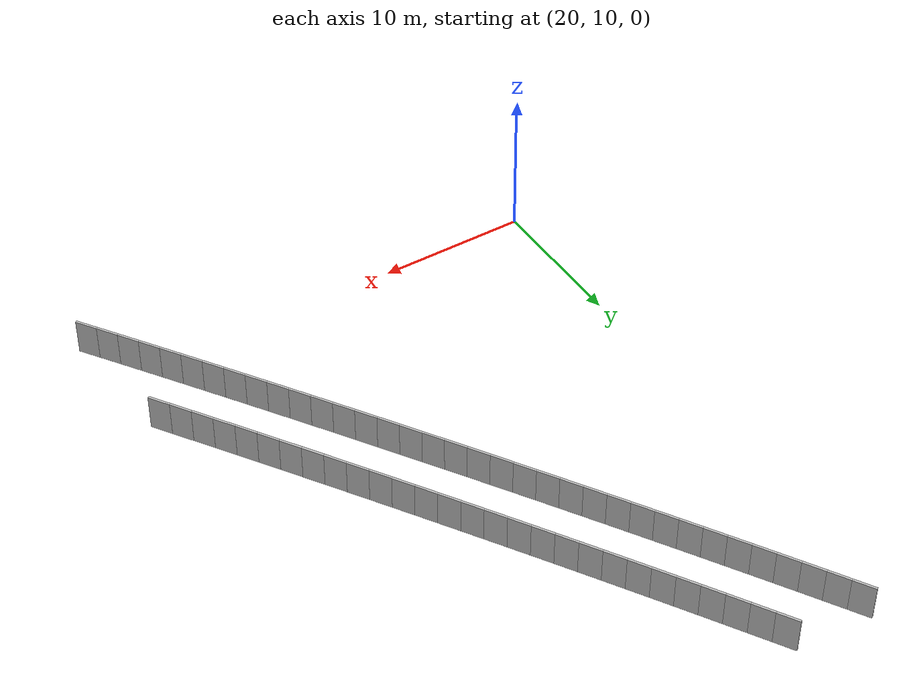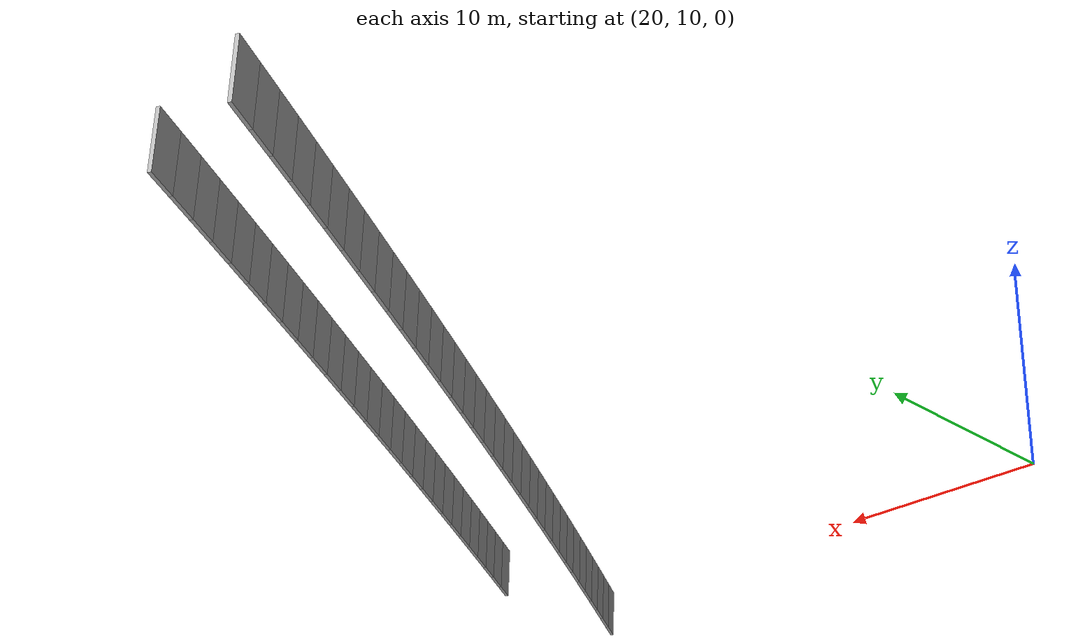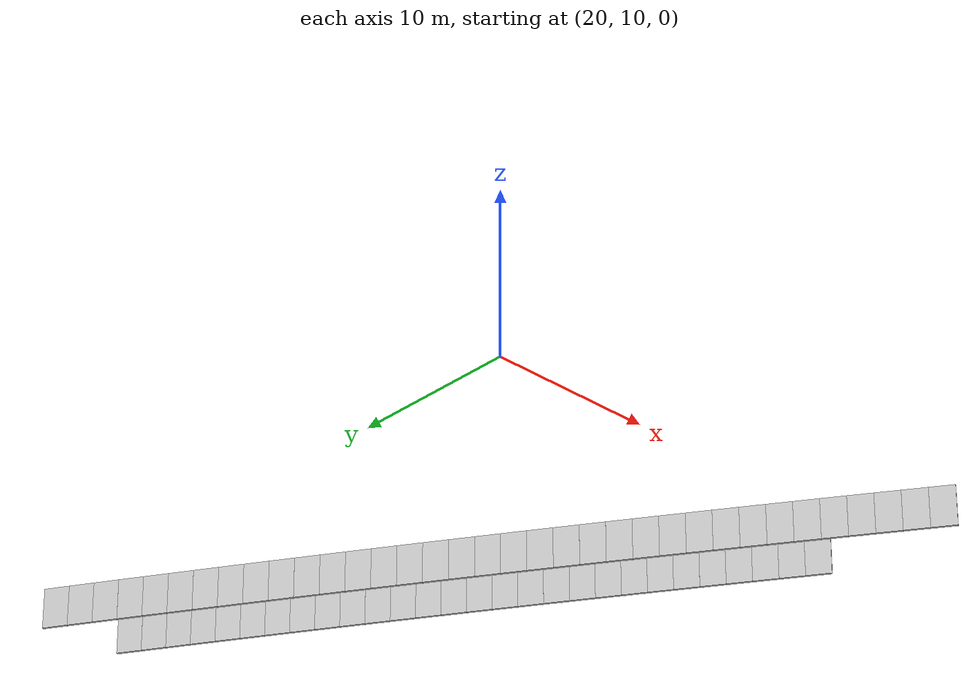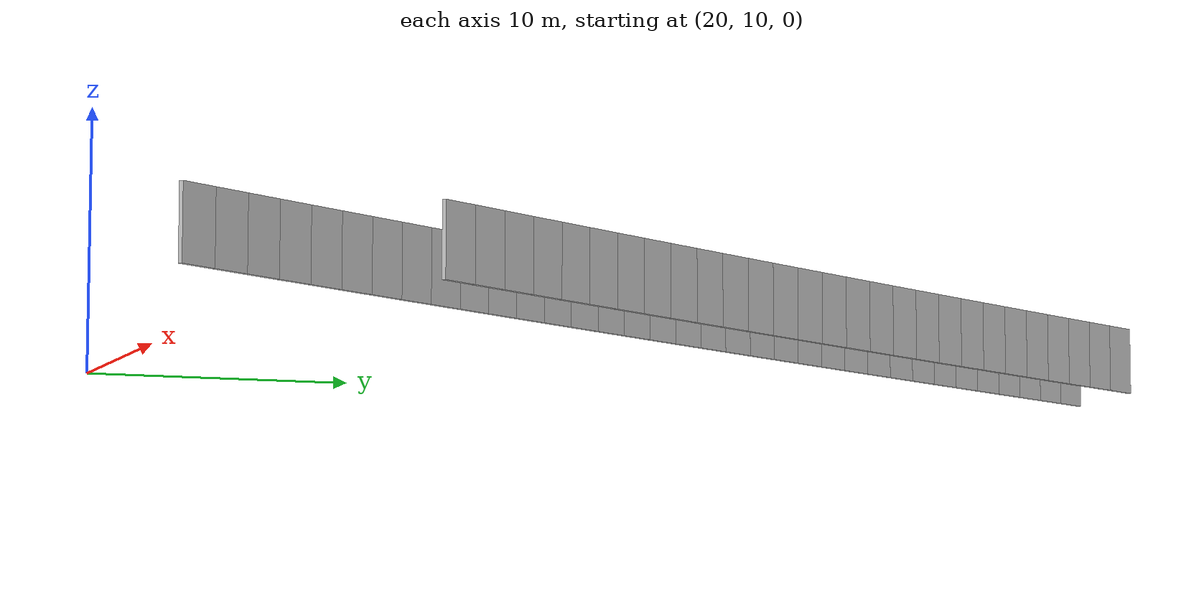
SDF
<?xml version="1.0" ?>
<sdf version="1.6">
  <model name="sps_0612">
    <pose frame="">0 0 0 0 -0 0</pose>
    <static>1</static>
    <self_collide>0</self_collide>
    <allow_auto_disable>0</allow_auto_disable>
    <link name="Wall8361">
      <kinematic>0</kinematic>
      <gravity>1</gravity>
      <self_collide>0</self_collide>
      <collision name="collision">
        <geometry>
          <box>
            <size>1.49893 0.15 2.5</size>
          </box>
        </geometry>
        <pose frame="">0 0 0 0 -0 0</pose>
      </collision>
      <visual name="visual">
        <geometry>
          <box>
            <size>1.49893 0.15 2.5</size>
          </box>
        </geometry>
        <pose frame="">0 0 0 0 -0 0</pose>
        <cast_shadows>1</cast_shadows>
        <transparency>0.0</transparency>
      </visual>
      <pose frame="">22.3165 49.2875 1.25 0 0 -1.02449</pose>
    </link>
    <link name="Wall8362">
      <kinematic>0</kinematic>
      <gravity>1</gravity>
      <self_collide>0</self_collide>
      <collision name="collision">
        <geometry>
          <box>
            <size>1.49887 0.15 2.5</size>
          </box>
        </geometry>
        <pose frame="">0 0 0 0 -0 0</pose>
      </collision>
      <visual name="visual">
        <geometry>
          <box>
            <size>1.49887 0.15 2.5</size>
          </box>
        </geometry>
        <pose frame="">0 0 0 0 -0 0</pose>
        <cast_shadows>1</cast_shadows>
        <transparency>0.0</transparency>
      </visual>
      <pose frame="">23.0962 48.0074 1.25 0 0 -1.02284</pose>
    </link>
    <link name="Wall8363">
      <kinematic>0</kinematic>
      <gravity>1</gravity>
      <self_collide>0</self_collide>
      <collision name="collision">
        <geometry>
          <box>
            <size>1.49921 0.15 2.5</size>
          </box>
        </geometry>
        <pose frame="">0 0 0 0 -0 0</pose>
      </collision>
      <visual name="visual">
        <geometry>
          <box>
            <size>1.49921 0.15 2.5</size>
          </box>
        </geometry>
        <pose frame="">0 0 0 0 -0 0</pose>
        <cast_shadows>1</cast_shadows>
        <transparency>0.0</transparency>
      </visual>
      <pose frame="">23.878 46.7284 1.25 0 0 -1.02145</pose>
    </link>
    <link name="Wall8364">
      <kinematic>0</kinematic>
      <gravity>1</gravity>
      <self_collide>0</self_collide>
      <collision name="collision">
        <geometry>
          <box>
            <size>1.49876 0.15 2.5</size>
          </box>
        </geometry>
        <pose frame="">0 0 0 0 -0 0</pose>
      </collision>
      <visual name="visual">
        <geometry>
          <box>
            <size>1.49876 0.15 2.5</size>
          </box>
        </geometry>
        <pose frame="">0 0 0 0 -0 0</pose>
        <cast_shadows>1</cast_shadows>
        <transparency>0.0</transparency>
      </visual>
      <pose frame="">24.6617 45.4506 1.25 0 0 -1.01984</pose>
    </link>
    <link name="Wall8365">
      <kinematic>0</kinematic>
      <gravity>1</gravity>
      <self_collide>0</self_collide>
      <collision name="collision">
        <geometry>
          <box>
            <size>1.49892 0.15 2.5</size>
          </box>
        </geometry>
        <pose frame="">0 0 0 0 -0 0</pose>
      </collision>
      <visual name="visual">
        <geometry>
          <box>
            <size>1.49892 0.15 2.5</size>
          </box>
        </geometry>
        <pose frame="">0 0 0 0 -0 0</pose>
        <cast_shadows>1</cast_shadows>
        <transparency>0.0</transparency>
      </visual>
      <pose frame="">25.4474 44.1742 1.25 0 0 -1.01818</pose>
    </link>
    <link name="Wall8366">
      <kinematic>0</kinematic>
      <gravity>1</gravity>
      <self_collide>0</self_collide>
      <collision name="collision">
        <geometry>
          <box>
            <size>1.49904 0.15 2.5</size>
          </box>
        </geometry>
        <pose frame="">0 0 0 0 -0 0</pose>
      </collision>
      <visual name="visual">
        <geometry>
          <box>
            <size>1.49904 0.15 2.5</size>
          </box>
        </geometry>
        <pose frame="">0 0 0 0 -0 0</pose>
        <cast_shadows>1</cast_shadows>
        <transparency>0.0</transparency>
      </visual>
      <pose frame="">26.2353 42.899 1.25 0 0 -1.01651</pose>
    </link>
    <link name="Wall8367">
      <kinematic>0</kinematic>
      <gravity>1</gravity>
      <self_collide>0</self_collide>
      <collision name="collision">
        <geometry>
          <box>
            <size>1.49897 0.15 2.5</size>
          </box>
        </geometry>
        <pose frame="">0 0 0 0 -0 0</pose>
      </collision>
      <visual name="visual">
        <geometry>
          <box>
            <size>1.49897 0.15 2.5</size>
          </box>
        </geometry>
        <pose frame="">0 0 0 0 -0 0</pose>
        <cast_shadows>1</cast_shadows>
        <transparency>0.0</transparency>
      </visual>
      <pose frame="">27.0253 41.625 1.25 0 0 -1.01504</pose>
    </link>
    <link name="Wall8368">
      <kinematic>0</kinematic>
      <gravity>1</gravity>
      <self_collide>0</self_collide>
      <collision name="collision">
        <geometry>
          <box>
            <size>1.49901 0.15 2.5</size>
          </box>
        </geometry>
        <pose frame="">0 0 0 0 -0 0</pose>
      </collision>
      <visual name="visual">
        <geometry>
          <box>
            <size>1.49901 0.15 2.5</size>
          </box>
        </geometry>
        <pose frame="">0 0 0 0 -0 0</pose>
        <cast_shadows>1</cast_shadows>
        <transparency>0.0</transparency>
      </visual>
      <pose frame="">27.8171 40.3522 1.25 0 0 -1.01353</pose>
    </link>
    <link name="Wall8369">
      <kinematic>0</kinematic>
      <gravity>1</gravity>
      <self_collide>0</self_collide>
      <collision name="collision">
        <geometry>
          <box>
            <size>1.49889 0.15 2.5</size>
          </box>
        </geometry>
        <pose frame="">0 0 0 0 -0 0</pose>
      </collision>
      <visual name="visual">
        <geometry>
          <box>
            <size>1.49889 0.15 2.5</size>
          </box>
        </geometry>
        <pose frame="">0 0 0 0 -0 0</pose>
        <cast_shadows>1</cast_shadows>
        <transparency>0.0</transparency>
      </visual>
      <pose frame="">28.6109 39.0807 1.25 0 0 -1.01189</pose>
    </link>
    <link name="Wall8370">
      <kinematic>0</kinematic>
      <gravity>1</gravity>
      <self_collide>0</self_collide>
      <collision name="collision">
        <geometry>
          <box>
            <size>1.49893 0.15 2.5</size>
          </box>
        </geometry>
        <pose frame="">0 0 0 0 -0 0</pose>
      </collision>
      <visual name="visual">
        <geometry>
          <box>
            <size>1.49893 0.15 2.5</size>
          </box>
        </geometry>
        <pose frame="">0 0 0 0 -0 0</pose>
        <cast_shadows>1</cast_shadows>
        <transparency>0.0</transparency>
      </visual>
      <pose frame="">29.4067 37.8105 1.25 0 0 -1.01032</pose>
    </link>
    <link name="Wall8371">
      <kinematic>0</kinematic>
      <gravity>1</gravity>
      <self_collide>0</self_collide>
      <collision name="collision">
        <geometry>
          <box>
            <size>1.49878 0.15 2.5</size>
          </box>
        </geometry>
        <pose frame="">0 0 0 0 -0 0</pose>
      </collision>
      <visual name="visual">
        <geometry>
          <box>
            <size>1.49878 0.15 2.5</size>
          </box>
        </geometry>
        <pose frame="">0 0 0 0 -0 0</pose>
        <cast_shadows>1</cast_shadows>
        <transparency>0.0</transparency>
      </visual>
      <pose frame="">30.2045 36.5416 1.25 0 0 -1.00872</pose>
    </link>
    <link name="Wall8372">
      <kinematic>0</kinematic>
      <gravity>1</gravity>
      <self_collide>0</self_collide>
      <collision name="collision">
        <geometry>
          <box>
            <size>1.49906 0.15 2.5</size>
          </box>
        </geometry>
        <pose frame="">0 0 0 0 -0 0</pose>
      </collision>
      <visual name="visual">
        <geometry>
          <box>
            <size>1.49906 0.15 2.5</size>
          </box>
        </geometry>
        <pose frame="">0 0 0 0 -0 0</pose>
        <cast_shadows>1</cast_shadows>
        <transparency>0.0</transparency>
      </visual>
      <pose frame="">31.0043 35.2739 1.25 0 0 -1.0072</pose>
    </link>
    <link name="Wall8373">
      <kinematic>0</kinematic>
      <gravity>1</gravity>
      <self_collide>0</self_collide>
      <collision name="collision">
        <geometry>
          <box>
            <size>1.49901 0.15 2.5</size>
          </box>
        </geometry>
        <pose frame="">0 0 0 0 -0 0</pose>
      </collision>
      <visual name="visual">
        <geometry>
          <box>
            <size>1.49901 0.15 2.5</size>
          </box>
        </geometry>
        <pose frame="">0 0 0 0 -0 0</pose>
        <cast_shadows>1</cast_shadows>
        <transparency>0.0</transparency>
      </visual>
      <pose frame="">31.8062 34.0074 1.25 0 0 -1.00549</pose>
    </link>
    <link name="Wall8374">
      <kinematic>0</kinematic>
      <gravity>1</gravity>
      <self_collide>0</self_collide>
      <collision name="collision">
        <geometry>
          <box>
            <size>1.49897 0.15 2.5</size>
          </box>
        </geometry>
        <pose frame="">0 0 0 0 -0 0</pose>
      </collision>
      <visual name="visual">
        <geometry>
          <box>
            <size>1.49897 0.15 2.5</size>
          </box>
        </geometry>
        <pose frame="">0 0 0 0 -0 0</pose>
        <cast_shadows>1</cast_shadows>
        <transparency>0.0</transparency>
      </visual>
      <pose frame="">32.6101 32.7422 1.25 0 0 -1.00403</pose>
    </link>
    <link name="Wall8375">
      <kinematic>0</kinematic>
      <gravity>1</gravity>
      <self_collide>0</self_collide>
      <collision name="collision">
        <geometry>
          <box>
            <size>1.49883 0.15 2.5</size>
          </box>
        </geometry>
        <pose frame="">0 0 0 0 -0 0</pose>
      </collision>
      <visual name="visual">
        <geometry>
          <box>
            <size>1.49883 0.15 2.5</size>
          </box>
        </geometry>
        <pose frame="">0 0 0 0 -0 0</pose>
        <cast_shadows>1</cast_shadows>
        <transparency>0.0</transparency>
      </visual>
      <pose frame="">33.4159 31.4783 1.25 0 0 -1.00242</pose>
    </link>
    <link name="Wall8376">
      <kinematic>0</kinematic>
      <gravity>1</gravity>
      <self_collide>0</self_collide>
      <collision name="collision">
        <geometry>
          <box>
            <size>1.49907 0.15 2.5</size>
          </box>
        </geometry>
        <pose frame="">0 0 0 0 -0 0</pose>
      </collision>
      <visual name="visual">
        <geometry>
          <box>
            <size>1.49907 0.15 2.5</size>
          </box>
        </geometry>
        <pose frame="">0 0 0 0 -0 0</pose>
        <cast_shadows>1</cast_shadows>
        <transparency>0.0</transparency>
      </visual>
      <pose frame="">34.2237 30.2157 1.25 0 0 -1.00074</pose>
    </link>
    <link name="Wall8377">
      <kinematic>0</kinematic>
      <gravity>1</gravity>
      <self_collide>0</self_collide>
      <collision name="collision">
        <geometry>
          <box>
            <size>1.4988 0.15 2.5</size>
          </box>
        </geometry>
        <pose frame="">0 0 0 0 -0 0</pose>
      </collision>
      <visual name="visual">
        <geometry>
          <box>
            <size>1.4988 0.15 2.5</size>
          </box>
        </geometry>
        <pose frame="">0 0 0 0 -0 0</pose>
        <cast_shadows>1</cast_shadows>
        <transparency>0.0</transparency>
      </visual>
      <pose frame="">35.0337 28.9544 1.25 0 0 -0.999217</pose>
    </link>
    <link name="Wall8378">
      <kinematic>0</kinematic>
      <gravity>1</gravity>
      <self_collide>0</self_collide>
      <collision name="collision">
        <geometry>
          <box>
            <size>1.49901 0.15 2.5</size>
          </box>
        </geometry>
        <pose frame="">0 0 0 0 -0 0</pose>
      </collision>
      <visual name="visual">
        <geometry>
          <box>
            <size>1.49901 0.15 2.5</size>
          </box>
        </geometry>
        <pose frame="">0 0 0 0 -0 0</pose>
        <cast_shadows>1</cast_shadows>
        <transparency>0.0</transparency>
      </visual>
      <pose frame="">35.8455 27.6944 1.25 0 0 -0.997565</pose>
    </link>
    <link name="Wall8379">
      <kinematic>0</kinematic>
      <gravity>1</gravity>
      <self_collide>0</self_collide>
      <collision name="collision">
        <geometry>
          <box>
            <size>1.49903 0.15 2.5</size>
          </box>
        </geometry>
        <pose frame="">0 0 0 0 -0 0</pose>
      </collision>
      <visual name="visual">
        <geometry>
          <box>
            <size>1.49903 0.15 2.5</size>
          </box>
        </geometry>
        <pose frame="">0 0 0 0 -0 0</pose>
        <cast_shadows>1</cast_shadows>
        <transparency>0.0</transparency>
      </visual>
      <pose frame="">36.6594 26.4356 1.25 0 0 -0.996119</pose>
    </link>
    <link name="Wall8380">
      <kinematic>0</kinematic>
      <gravity>1</gravity>
      <self_collide>0</self_collide>
      <collision name="collision">
        <geometry>
          <box>
            <size>1.49887 0.15 2.5</size>
          </box>
        </geometry>
        <pose frame="">0 0 0 0 -0 0</pose>
      </collision>
      <visual name="visual">
        <geometry>
          <box>
            <size>1.49887 0.15 2.5</size>
          </box>
        </geometry>
        <pose frame="">0 0 0 0 -0 0</pose>
        <cast_shadows>1</cast_shadows>
        <transparency>0.0</transparency>
      </visual>
      <pose frame="">37.4752 25.1781 1.25 0 0 -0.994495</pose>
    </link>
    <link name="Wall8381">
      <kinematic>0</kinematic>
      <gravity>1</gravity>
      <self_collide>0</self_collide>
      <collision name="collision">
        <geometry>
          <box>
            <size>1.49854 0.15 2.5</size>
          </box>
        </geometry>
        <pose frame="">0 0 0 0 -0 0</pose>
      </collision>
      <visual name="visual">
        <geometry>
          <box>
            <size>1.49854 0.15 2.5</size>
          </box>
        </geometry>
        <pose frame="">0 0 0 0 -0 0</pose>
        <cast_shadows>1</cast_shadows>
        <transparency>0.0</transparency>
      </visual>
      <pose frame="">38.2929 23.9221 1.25 0 0 -0.992893</pose>
    </link>
    <link name="Wall8382">
      <kinematic>0</kinematic>
      <gravity>1</gravity>
      <self_collide>0</self_collide>
      <collision name="collision">
        <geometry>
          <box>
            <size>1.49892 0.15 2.5</size>
          </box>
        </geometry>
        <pose frame="">0 0 0 0 -0 0</pose>
      </collision>
      <visual name="visual">
        <geometry>
          <box>
            <size>1.49892 0.15 2.5</size>
          </box>
        </geometry>
        <pose frame="">0 0 0 0 -0 0</pose>
        <cast_shadows>1</cast_shadows>
        <transparency>0.0</transparency>
      </visual>
      <pose frame="">39.1126 22.6674 1.25 0 0 -0.991309</pose>
    </link>
    <link name="Wall8383">
      <kinematic>0</kinematic>
      <gravity>1</gravity>
      <self_collide>0</self_collide>
      <collision name="collision">
        <geometry>
          <box>
            <size>1.4989 0.15 2.5</size>
          </box>
        </geometry>
        <pose frame="">0 0 0 0 -0 0</pose>
      </collision>
      <visual name="visual">
        <geometry>
          <box>
            <size>1.4989 0.15 2.5</size>
          </box>
        </geometry>
        <pose frame="">0 0 0 0 -0 0</pose>
        <cast_shadows>1</cast_shadows>
        <transparency>0.0</transparency>
      </visual>
      <pose frame="">39.9343 21.4138 1.25 0 0 -0.989841</pose>
    </link>
    <link name="Wall8384">
      <kinematic>0</kinematic>
      <gravity>1</gravity>
      <self_collide>0</self_collide>
      <collision name="collision">
        <geometry>
          <box>
            <size>1.4989 0.15 2.5</size>
          </box>
        </geometry>
        <pose frame="">0 0 0 0 -0 0</pose>
      </collision>
      <visual name="visual">
        <geometry>
          <box>
            <size>1.4989 0.15 2.5</size>
          </box>
        </geometry>
        <pose frame="">0 0 0 0 -0 0</pose>
        <cast_shadows>1</cast_shadows>
        <transparency>0.0</transparency>
      </visual>
      <pose frame="">40.758 20.1615 1.25 0 0 -0.988136</pose>
    </link>
    <link name="Wall8385">
      <kinematic>0</kinematic>
      <gravity>1</gravity>
      <self_collide>0</self_collide>
      <collision name="collision">
        <geometry>
          <box>
            <size>1.49908 0.15 2.5</size>
          </box>
        </geometry>
        <pose frame="">0 0 0 0 -0 0</pose>
      </collision>
      <visual name="visual">
        <geometry>
          <box>
            <size>1.49908 0.15 2.5</size>
          </box>
        </geometry>
        <pose frame="">0 0 0 0 -0 0</pose>
        <cast_shadows>1</cast_shadows>
        <transparency>0.0</transparency>
      </visual>
      <pose frame="">41.5839 18.9105 1.25 0 0 -0.986554</pose>
    </link>
    <link name="Wall8386">
      <kinematic>0</kinematic>
      <gravity>1</gravity>
      <self_collide>0</self_collide>
      <collision name="collision">
        <geometry>
          <box>
            <size>1.49885 0.15 2.5</size>
          </box>
        </geometry>
        <pose frame="">0 0 0 0 -0 0</pose>
      </collision>
      <visual name="visual">
        <geometry>
          <box>
            <size>1.49885 0.15 2.5</size>
          </box>
        </geometry>
        <pose frame="">0 0 0 0 -0 0</pose>
        <cast_shadows>1</cast_shadows>
        <transparency>0.0</transparency>
      </visual>
      <pose frame="">42.4116 17.6608 1.25 0 0 -0.985086</pose>
    </link>
    <link name="Wall8387">
      <kinematic>0</kinematic>
      <gravity>1</gravity>
      <self_collide>0</self_collide>
      <collision name="collision">
        <geometry>
          <box>
            <size>1.49888 0.15 2.5</size>
          </box>
        </geometry>
        <pose frame="">0 0 0 0 -0 0</pose>
      </collision>
      <visual name="visual">
        <geometry>
          <box>
            <size>1.49888 0.15 2.5</size>
          </box>
        </geometry>
        <pose frame="">0 0 0 0 -0 0</pose>
        <cast_shadows>1</cast_shadows>
        <transparency>0.0</transparency>
      </visual>
      <pose frame="">43.2412 16.4125 1.25 0 0 -0.983291</pose>
    </link>
    <link name="Wall8388">
      <kinematic>0</kinematic>
      <gravity>1</gravity>
      <self_collide>0</self_collide>
      <collision name="collision">
        <geometry>
          <box>
            <size>1.49893 0.15 2.5</size>
          </box>
        </geometry>
        <pose frame="">0 0 0 0 -0 0</pose>
      </collision>
      <visual name="visual">
        <geometry>
          <box>
            <size>1.49893 0.15 2.5</size>
          </box>
        </geometry>
        <pose frame="">0 0 0 0 -0 0</pose>
        <cast_shadows>1</cast_shadows>
        <transparency>0.0</transparency>
      </visual>
      <pose frame="">44.073 15.1655 1.25 0 0 -0.981845</pose>
    </link>
    <link name="Wall8389">
      <kinematic>0</kinematic>
      <gravity>1</gravity>
      <self_collide>0</self_collide>
      <collision name="collision">
        <geometry>
          <box>
            <size>1.49906 0.15 2.5</size>
          </box>
        </geometry>
        <pose frame="">0 0 0 0 -0 0</pose>
      </collision>
      <visual name="visual">
        <geometry>
          <box>
            <size>1.49906 0.15 2.5</size>
          </box>
        </geometry>
        <pose frame="">0 0 0 0 -0 0</pose>
        <cast_shadows>1</cast_shadows>
        <transparency>0.0</transparency>
      </visual>
      <pose frame="">44.9066 13.9197 1.25 0 0 -0.980332</pose>
    </link>
    <link name="Wall8390">
      <kinematic>0</kinematic>
      <gravity>1</gravity>
      <self_collide>0</self_collide>
      <collision name="collision">
        <geometry>
          <box>
            <size>1.49881 0.15 2.5</size>
          </box>
        </geometry>
        <pose frame="">0 0 0 0 -0 0</pose>
      </collision>
      <visual name="visual">
        <geometry>
          <box>
            <size>1.49881 0.15 2.5</size>
          </box>
        </geometry>
        <pose frame="">0 0 0 0 -0 0</pose>
        <cast_shadows>1</cast_shadows>
        <transparency>0.0</transparency>
      </visual>
      <pose frame="">45.7422 12.6753 1.25 0 0 -0.978604</pose>
    </link>
    <link name="Wall8391">
      <kinematic>0</kinematic>
      <gravity>1</gravity>
      <self_collide>0</self_collide>
      <collision name="collision">
        <geometry>
          <box>
            <size>1.49924 0.15 2.5</size>
          </box>
        </geometry>
        <pose frame="">0 0 0 0 -0 0</pose>
      </collision>
      <visual name="visual">
        <geometry>
          <box>
            <size>1.49924 0.15 2.5</size>
          </box>
        </geometry>
        <pose frame="">0 0 0 0 -0 0</pose>
        <cast_shadows>1</cast_shadows>
        <transparency>0.0</transparency>
      </visual>
      <pose frame="">46.5798 11.4321 1.25 0 0 -0.977227</pose>
    </link>
    <link name="Wall8392">
      <kinematic>0</kinematic>
      <gravity>1</gravity>
      <self_collide>0</self_collide>
      <collision name="collision">
        <geometry>
          <box>
            <size>1.49895 0.15 2.5</size>
          </box>
        </geometry>
        <pose frame="">0 0 0 0 -0 0</pose>
      </collision>
      <visual name="visual">
        <geometry>
          <box>
            <size>1.49895 0.15 2.5</size>
          </box>
        </geometry>
        <pose frame="">0 0 0 0 -0 0</pose>
        <cast_shadows>1</cast_shadows>
        <transparency>0.0</transparency>
      </visual>
      <pose frame="">47.4192 10.1901 1.25 0 0 -0.975622</pose>
    </link>
    <link name="Wall8393">
      <kinematic>0</kinematic>
      <gravity>1</gravity>
      <self_collide>0</self_collide>
      <collision name="collision">
        <geometry>
          <box>
            <size>1.49903 0.15 2.5</size>
          </box>
        </geometry>
        <pose frame="">0 0 0 0 -0 0</pose>
      </collision>
      <visual name="visual">
        <geometry>
          <box>
            <size>1.49903 0.15 2.5</size>
          </box>
        </geometry>
        <pose frame="">0 0 0 0 -0 0</pose>
        <cast_shadows>1</cast_shadows>
        <transparency>0.0</transparency>
      </visual>
      <pose frame="">48.2607 8.94957 1.25 0 0 -0.973884</pose>
    </link>
    <link name="Wall8394">
      <kinematic>0</kinematic>
      <gravity>1</gravity>
      <self_collide>0</self_collide>
      <collision name="collision">
        <geometry>
          <box>
            <size>1.49885 0.15 2.5</size>
          </box>
        </geometry>
        <pose frame="">0 0 0 0 -0 0</pose>
      </collision>
      <visual name="visual">
        <geometry>
          <box>
            <size>1.49885 0.15 2.5</size>
          </box>
        </geometry>
        <pose frame="">0 0 0 0 -0 0</pose>
        <cast_shadows>1</cast_shadows>
        <transparency>0.0</transparency>
      </visual>
      <pose frame="">49.1042 7.71049 1.25 0 0 -0.972324</pose>
    </link>
    <link name="Wall8395">
      <kinematic>0</kinematic>
      <gravity>1</gravity>
      <self_collide>0</self_collide>
      <collision name="collision">
        <geometry>
          <box>
            <size>1.49894 0.15 2.5</size>
          </box>
        </geometry>
        <pose frame="">0 0 0 0 -0 0</pose>
      </collision>
      <visual name="visual">
        <geometry>
          <box>
            <size>1.49894 0.15 2.5</size>
          </box>
        </geometry>
        <pose frame="">0 0 0 0 -0 0</pose>
        <cast_shadows>1</cast_shadows>
        <transparency>0.0</transparency>
      </visual>
      <pose frame="">49.9495 6.4727 1.25 0 0 -0.970935</pose>
    </link>
    <link name="Wall9444">
      <kinematic>0</kinematic>
      <gravity>1</gravity>
      <self_collide>0</self_collide>
      <collision name="collision">
        <geometry>
          <box>
            <size>1.49242 0.15 2.5</size>
          </box>
        </geometry>
        <pose frame="">0 0 0 0 -0 0</pose>
      </collision>
      <visual name="visual">
        <geometry>
          <box>
            <size>1.49242 0.15 2.5</size>
          </box>
        </geometry>
        <pose frame="">0 0 0 0 -0 0</pose>
        <cast_shadows>1</cast_shadows>
        <transparency>0.0</transparency>
      </visual>
      <pose frame="">27.4086 48.8905 1.25 0 0 -1.02136</pose>
    </link>
    <link name="Wall9445">
      <kinematic>0</kinematic>
      <gravity>1</gravity>
      <self_collide>0</self_collide>
      <collision name="collision">
        <geometry>
          <box>
            <size>1.49237 0.15 2.5</size>
          </box>
        </geometry>
        <pose frame="">0 0 0 0 -0 0</pose>
      </collision>
      <visual name="visual">
        <geometry>
          <box>
            <size>1.49237 0.15 2.5</size>
          </box>
        </geometry>
        <pose frame="">0 0 0 0 -0 0</pose>
        <cast_shadows>1</cast_shadows>
        <transparency>0.0</transparency>
      </visual>
      <pose frame="">28.189 47.6184 1.25 0 0 -1.0197</pose>
    </link>
    <link name="Wall9446">
      <kinematic>0</kinematic>
      <gravity>1</gravity>
      <self_collide>0</self_collide>
      <collision name="collision">
        <geometry>
          <box>
            <size>1.49251 0.15 2.5</size>
          </box>
        </geometry>
        <pose frame="">0 0 0 0 -0 0</pose>
      </collision>
      <visual name="visual">
        <geometry>
          <box>
            <size>1.49251 0.15 2.5</size>
          </box>
        </geometry>
        <pose frame="">0 0 0 0 -0 0</pose>
        <cast_shadows>1</cast_shadows>
        <transparency>0.0</transparency>
      </visual>
      <pose frame="">28.9714 46.3475 1.25 0 0 -1.01822</pose>
    </link>
    <link name="Wall9447">
      <kinematic>0</kinematic>
      <gravity>1</gravity>
      <self_collide>0</self_collide>
      <collision name="collision">
        <geometry>
          <box>
            <size>1.49237 0.15 2.5</size>
          </box>
        </geometry>
        <pose frame="">0 0 0 0 -0 0</pose>
      </collision>
      <visual name="visual">
        <geometry>
          <box>
            <size>1.49237 0.15 2.5</size>
          </box>
        </geometry>
        <pose frame="">0 0 0 0 -0 0</pose>
        <cast_shadows>1</cast_shadows>
        <transparency>0.0</transparency>
      </visual>
      <pose frame="">29.7558 45.0778 1.25 0 0 -1.01658</pose>
    </link>
    <link name="Wall9448">
      <kinematic>0</kinematic>
      <gravity>1</gravity>
      <self_collide>0</self_collide>
      <collision name="collision">
        <geometry>
          <box>
            <size>1.49216 0.15 2.5</size>
          </box>
        </geometry>
        <pose frame="">0 0 0 0 -0 0</pose>
      </collision>
      <visual name="visual">
        <geometry>
          <box>
            <size>1.49216 0.15 2.5</size>
          </box>
        </geometry>
        <pose frame="">0 0 0 0 -0 0</pose>
        <cast_shadows>1</cast_shadows>
        <transparency>0.0</transparency>
      </visual>
      <pose frame="">30.542 43.8095 1.25 0 0 -1.0151</pose>
    </link>
    <link name="Wall9449">
      <kinematic>0</kinematic>
      <gravity>1</gravity>
      <self_collide>0</self_collide>
      <collision name="collision">
        <geometry>
          <box>
            <size>1.49247 0.15 2.5</size>
          </box>
        </geometry>
        <pose frame="">0 0 0 0 -0 0</pose>
      </collision>
      <visual name="visual">
        <geometry>
          <box>
            <size>1.49247 0.15 2.5</size>
          </box>
        </geometry>
        <pose frame="">0 0 0 0 -0 0</pose>
        <cast_shadows>1</cast_shadows>
        <transparency>0.0</transparency>
      </visual>
      <pose frame="">31.3303 42.5424 1.25 0 0 -1.01345</pose>
    </link>
    <link name="Wall9450">
      <kinematic>0</kinematic>
      <gravity>1</gravity>
      <self_collide>0</self_collide>
      <collision name="collision">
        <geometry>
          <box>
            <size>1.49232 0.15 2.5</size>
          </box>
        </geometry>
        <pose frame="">0 0 0 0 -0 0</pose>
      </collision>
      <visual name="visual">
        <geometry>
          <box>
            <size>1.49232 0.15 2.5</size>
          </box>
        </geometry>
        <pose frame="">0 0 0 0 -0 0</pose>
        <cast_shadows>1</cast_shadows>
        <transparency>0.0</transparency>
      </visual>
      <pose frame="">32.1207 41.2765 1.25 0 0 -1.01184</pose>
    </link>
    <link name="Wall9451">
      <kinematic>0</kinematic>
      <gravity>1</gravity>
      <self_collide>0</self_collide>
      <collision name="collision">
        <geometry>
          <box>
            <size>1.49251 0.15 2.5</size>
          </box>
        </geometry>
        <pose frame="">0 0 0 0 -0 0</pose>
      </collision>
      <visual name="visual">
        <geometry>
          <box>
            <size>1.49251 0.15 2.5</size>
          </box>
        </geometry>
        <pose frame="">0 0 0 0 -0 0</pose>
        <cast_shadows>1</cast_shadows>
        <transparency>0.0</transparency>
      </visual>
      <pose frame="">32.9131 40.0118 1.25 0 0 -1.01032</pose>
    </link>
    <link name="Wall9452">
      <kinematic>0</kinematic>
      <gravity>1</gravity>
      <self_collide>0</self_collide>
      <collision name="collision">
        <geometry>
          <box>
            <size>1.49235 0.15 2.5</size>
          </box>
        </geometry>
        <pose frame="">0 0 0 0 -0 0</pose>
      </collision>
      <visual name="visual">
        <geometry>
          <box>
            <size>1.49235 0.15 2.5</size>
          </box>
        </geometry>
        <pose frame="">0 0 0 0 -0 0</pose>
        <cast_shadows>1</cast_shadows>
        <transparency>0.0</transparency>
      </visual>
      <pose frame="">33.7075 38.7483 1.25 0 0 -1.00881</pose>
    </link>
    <link name="Wall9453">
      <kinematic>0</kinematic>
      <gravity>1</gravity>
      <self_collide>0</self_collide>
      <collision name="collision">
        <geometry>
          <box>
            <size>1.49245 0.15 2.5</size>
          </box>
        </geometry>
        <pose frame="">0 0 0 0 -0 0</pose>
      </collision>
      <visual name="visual">
        <geometry>
          <box>
            <size>1.49245 0.15 2.5</size>
          </box>
        </geometry>
        <pose frame="">0 0 0 0 -0 0</pose>
        <cast_shadows>1</cast_shadows>
        <transparency>0.0</transparency>
      </visual>
      <pose frame="">34.5037 37.4861 1.25 0 0 -1.00716</pose>
    </link>
    <link name="Wall9454">
      <kinematic>0</kinematic>
      <gravity>1</gravity>
      <self_collide>0</self_collide>
      <collision name="collision">
        <geometry>
          <box>
            <size>1.49238 0.15 2.5</size>
          </box>
        </geometry>
        <pose frame="">0 0 0 0 -0 0</pose>
      </collision>
      <visual name="visual">
        <geometry>
          <box>
            <size>1.49238 0.15 2.5</size>
          </box>
        </geometry>
        <pose frame="">0 0 0 0 -0 0</pose>
        <cast_shadows>1</cast_shadows>
        <transparency>0.0</transparency>
      </visual>
      <pose frame="">35.3021 36.2252 1.25 0 0 -1.00548</pose>
    </link>
    <link name="Wall9455">
      <kinematic>0</kinematic>
      <gravity>1</gravity>
      <self_collide>0</self_collide>
      <collision name="collision">
        <geometry>
          <box>
            <size>1.49245 0.15 2.5</size>
          </box>
        </geometry>
        <pose frame="">0 0 0 0 -0 0</pose>
      </collision>
      <visual name="visual">
        <geometry>
          <box>
            <size>1.49245 0.15 2.5</size>
          </box>
        </geometry>
        <pose frame="">0 0 0 0 -0 0</pose>
        <cast_shadows>1</cast_shadows>
        <transparency>0.0</transparency>
      </visual>
      <pose frame="">36.1026 34.9656 1.25 0 0 -1.00396</pose>
    </link>
    <link name="Wall9456">
      <kinematic>0</kinematic>
      <gravity>1</gravity>
      <self_collide>0</self_collide>
      <collision name="collision">
        <geometry>
          <box>
            <size>1.49245 0.15 2.5</size>
          </box>
        </geometry>
        <pose frame="">0 0 0 0 -0 0</pose>
      </collision>
      <visual name="visual">
        <geometry>
          <box>
            <size>1.49245 0.15 2.5</size>
          </box>
        </geometry>
        <pose frame="">0 0 0 0 -0 0</pose>
        <cast_shadows>1</cast_shadows>
        <transparency>0.0</transparency>
      </visual>
      <pose frame="">36.905 33.7072 1.25 0 0 -1.00236</pose>
    </link>
    <link name="Wall9457">
      <kinematic>0</kinematic>
      <gravity>1</gravity>
      <self_collide>0</self_collide>
      <collision name="collision">
        <geometry>
          <box>
            <size>1.49248 0.15 2.5</size>
          </box>
        </geometry>
        <pose frame="">0 0 0 0 -0 0</pose>
      </collision>
      <visual name="visual">
        <geometry>
          <box>
            <size>1.49248 0.15 2.5</size>
          </box>
        </geometry>
        <pose frame="">0 0 0 0 -0 0</pose>
        <cast_shadows>1</cast_shadows>
        <transparency>0.0</transparency>
      </visual>
      <pose frame="">37.7093 32.45 1.25 0 0 -1.00097</pose>
    </link>
    <link name="Wall9458">
      <kinematic>0</kinematic>
      <gravity>1</gravity>
      <self_collide>0</self_collide>
      <collision name="collision">
        <geometry>
          <box>
            <size>1.49246 0.15 2.5</size>
          </box>
        </geometry>
        <pose frame="">0 0 0 0 -0 0</pose>
      </collision>
      <visual name="visual">
        <geometry>
          <box>
            <size>1.49246 0.15 2.5</size>
          </box>
        </geometry>
        <pose frame="">0 0 0 0 -0 0</pose>
        <cast_shadows>1</cast_shadows>
        <transparency>0.0</transparency>
      </visual>
      <pose frame="">38.5156 31.1941 1.25 0 0 -0.999162</pose>
    </link>
    <link name="Wall9459">
      <kinematic>0</kinematic>
      <gravity>1</gravity>
      <self_collide>0</self_collide>
      <collision name="collision">
        <geometry>
          <box>
            <size>1.49234 0.15 2.5</size>
          </box>
        </geometry>
        <pose frame="">0 0 0 0 -0 0</pose>
      </collision>
      <visual name="visual">
        <geometry>
          <box>
            <size>1.49234 0.15 2.5</size>
          </box>
        </geometry>
        <pose frame="">0 0 0 0 -0 0</pose>
        <cast_shadows>1</cast_shadows>
        <transparency>0.0</transparency>
      </visual>
      <pose frame="">39.324 29.9396 1.25 0 0 -0.997552</pose>
    </link>
    <link name="Wall9460">
      <kinematic>0</kinematic>
      <gravity>1</gravity>
      <self_collide>0</self_collide>
      <collision name="collision">
        <geometry>
          <box>
            <size>1.49236 0.15 2.5</size>
          </box>
        </geometry>
        <pose frame="">0 0 0 0 -0 0</pose>
      </collision>
      <visual name="visual">
        <geometry>
          <box>
            <size>1.49236 0.15 2.5</size>
          </box>
        </geometry>
        <pose frame="">0 0 0 0 -0 0</pose>
        <cast_shadows>1</cast_shadows>
        <transparency>0.0</transparency>
      </visual>
      <pose frame="">40.1343 28.6864 1.25 0 0 -0.9961</pose>
    </link>
    <link name="Wall9461">
      <kinematic>0</kinematic>
      <gravity>1</gravity>
      <self_collide>0</self_collide>
      <collision name="collision">
        <geometry>
          <box>
            <size>1.4925 0.15 2.5</size>
          </box>
        </geometry>
        <pose frame="">0 0 0 0 -0 0</pose>
      </collision>
      <visual name="visual">
        <geometry>
          <box>
            <size>1.4925 0.15 2.5</size>
          </box>
        </geometry>
        <pose frame="">0 0 0 0 -0 0</pose>
        <cast_shadows>1</cast_shadows>
        <transparency>0.0</transparency>
      </visual>
      <pose frame="">40.9466 27.4344 1.25 0 0 -0.994454</pose>
    </link>
    <link name="Wall9462">
      <kinematic>0</kinematic>
      <gravity>1</gravity>
      <self_collide>0</self_collide>
      <collision name="collision">
        <geometry>
          <box>
            <size>1.49236 0.15 2.5</size>
          </box>
        </geometry>
        <pose frame="">0 0 0 0 -0 0</pose>
      </collision>
      <visual name="visual">
        <geometry>
          <box>
            <size>1.49236 0.15 2.5</size>
          </box>
        </geometry>
        <pose frame="">0 0 0 0 -0 0</pose>
        <cast_shadows>1</cast_shadows>
        <transparency>0.0</transparency>
      </visual>
      <pose frame="">41.7609 26.1837 1.25 0 0 -0.992878</pose>
    </link>
    <link name="Wall9463">
      <kinematic>0</kinematic>
      <gravity>1</gravity>
      <self_collide>0</self_collide>
      <collision name="collision">
        <geometry>
          <box>
            <size>1.49176 0.15 2.5</size>
          </box>
        </geometry>
        <pose frame="">0 0 0 0 -0 0</pose>
      </collision>
      <visual name="visual">
        <geometry>
          <box>
            <size>1.49176 0.15 2.5</size>
          </box>
        </geometry>
        <pose frame="">0 0 0 0 -0 0</pose>
        <cast_shadows>1</cast_shadows>
        <transparency>0.0</transparency>
      </visual>
      <pose frame="">42.577 24.9346 1.25 0 0 -0.991248</pose>
    </link>
    <link name="Wall9464">
      <kinematic>0</kinematic>
      <gravity>1</gravity>
      <self_collide>0</self_collide>
      <collision name="collision">
        <geometry>
          <box>
            <size>1.49254 0.15 2.5</size>
          </box>
        </geometry>
        <pose frame="">0 0 0 0 -0 0</pose>
      </collision>
      <visual name="visual">
        <geometry>
          <box>
            <size>1.49254 0.15 2.5</size>
          </box>
        </geometry>
        <pose frame="">0 0 0 0 -0 0</pose>
        <cast_shadows>1</cast_shadows>
        <transparency>0.0</transparency>
      </visual>
      <pose frame="">43.395 23.6867 1.25 0 0 -0.98978</pose>
    </link>
    <link name="Wall9465">
      <kinematic>0</kinematic>
      <gravity>1</gravity>
      <self_collide>0</self_collide>
      <collision name="collision">
        <geometry>
          <box>
            <size>1.49234 0.15 2.5</size>
          </box>
        </geometry>
        <pose frame="">0 0 0 0 -0 0</pose>
      </collision>
      <visual name="visual">
        <geometry>
          <box>
            <size>1.49234 0.15 2.5</size>
          </box>
        </geometry>
        <pose frame="">0 0 0 0 -0 0</pose>
        <cast_shadows>1</cast_shadows>
        <transparency>0.0</transparency>
      </visual>
      <pose frame="">44.2151 22.4398 1.25 0 0 -0.988273</pose>
    </link>
    <link name="Wall9466">
      <kinematic>0</kinematic>
      <gravity>1</gravity>
      <self_collide>0</self_collide>
      <collision name="collision">
        <geometry>
          <box>
            <size>1.49256 0.15 2.5</size>
          </box>
        </geometry>
        <pose frame="">0 0 0 0 -0 0</pose>
      </collision>
      <visual name="visual">
        <geometry>
          <box>
            <size>1.49256 0.15 2.5</size>
          </box>
        </geometry>
        <pose frame="">0 0 0 0 -0 0</pose>
        <cast_shadows>1</cast_shadows>
        <transparency>0.0</transparency>
      </visual>
      <pose frame="">45.0373 21.1942 1.25 0 0 -0.986559</pose>
    </link>
    <link name="Wall9467">
      <kinematic>0</kinematic>
      <gravity>1</gravity>
      <self_collide>0</self_collide>
      <collision name="collision">
        <geometry>
          <box>
            <size>1.49234 0.15 2.5</size>
          </box>
        </geometry>
        <pose frame="">0 0 0 0 -0 0</pose>
      </collision>
      <visual name="visual">
        <geometry>
          <box>
            <size>1.49234 0.15 2.5</size>
          </box>
        </geometry>
        <pose frame="">0 0 0 0 -0 0</pose>
        <cast_shadows>1</cast_shadows>
        <transparency>0.0</transparency>
      </visual>
      <pose frame="">45.8614 19.9499 1.25 0 0 -0.985085</pose>
    </link>
    <link name="Wall9468">
      <kinematic>0</kinematic>
      <gravity>1</gravity>
      <self_collide>0</self_collide>
      <collision name="collision">
        <geometry>
          <box>
            <size>1.49257 0.15 2.5</size>
          </box>
        </geometry>
        <pose frame="">0 0 0 0 -0 0</pose>
      </collision>
      <visual name="visual">
        <geometry>
          <box>
            <size>1.49257 0.15 2.5</size>
          </box>
        </geometry>
        <pose frame="">0 0 0 0 -0 0</pose>
        <cast_shadows>1</cast_shadows>
        <transparency>0.0</transparency>
      </visual>
      <pose frame="">46.6874 18.7069 1.25 0 0 -0.983372</pose>
    </link>
    <link name="Wall9469">
      <kinematic>0</kinematic>
      <gravity>1</gravity>
      <self_collide>0</self_collide>
      <collision name="collision">
        <geometry>
          <box>
            <size>1.49247 0.15 2.5</size>
          </box>
        </geometry>
        <pose frame="">0 0 0 0 -0 0</pose>
      </collision>
      <visual name="visual">
        <geometry>
          <box>
            <size>1.49247 0.15 2.5</size>
          </box>
        </geometry>
        <pose frame="">0 0 0 0 -0 0</pose>
        <cast_shadows>1</cast_shadows>
        <transparency>0.0</transparency>
      </visual>
      <pose frame="">47.5156 17.4652 1.25 0 0 -0.981852</pose>
    </link>
    <link name="Wall9470">
      <kinematic>0</kinematic>
      <gravity>1</gravity>
      <self_collide>0</self_collide>
      <collision name="collision">
        <geometry>
          <box>
            <size>1.4922 0.15 2.5</size>
          </box>
        </geometry>
        <pose frame="">0 0 0 0 -0 0</pose>
      </collision>
      <visual name="visual">
        <geometry>
          <box>
            <size>1.4922 0.15 2.5</size>
          </box>
        </geometry>
        <pose frame="">0 0 0 0 -0 0</pose>
        <cast_shadows>1</cast_shadows>
        <transparency>0.0</transparency>
      </visual>
      <pose frame="">48.3455 16.2249 1.25 0 0 -0.980355</pose>
    </link>
    <link name="Wall9471">
      <kinematic>0</kinematic>
      <gravity>1</gravity>
      <self_collide>0</self_collide>
      <collision name="collision">
        <geometry>
          <box>
            <size>1.4925 0.15 2.5</size>
          </box>
        </geometry>
        <pose frame="">0 0 0 0 -0 0</pose>
      </collision>
      <visual name="visual">
        <geometry>
          <box>
            <size>1.4925 0.15 2.5</size>
          </box>
        </geometry>
        <pose frame="">0 0 0 0 -0 0</pose>
        <cast_shadows>1</cast_shadows>
        <transparency>0.0</transparency>
      </visual>
      <pose frame="">49.1773 14.9859 1.25 0 0 -0.978665</pose>
    </link>
  </model>
</sdf>
